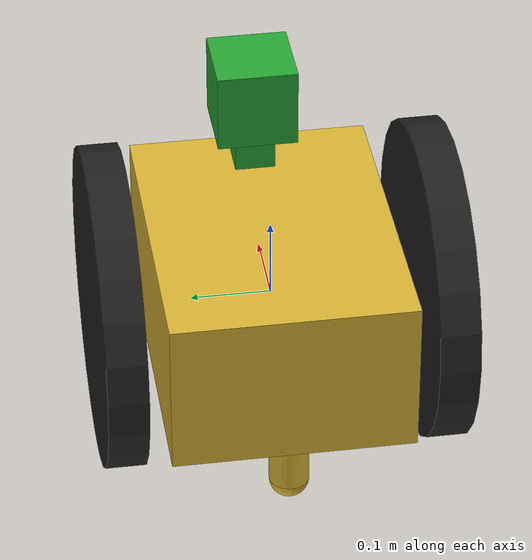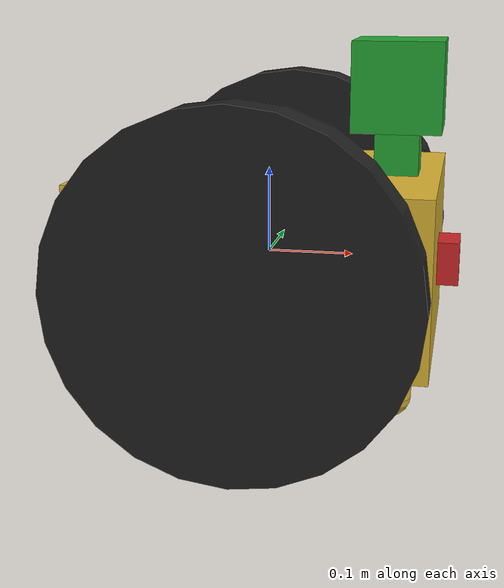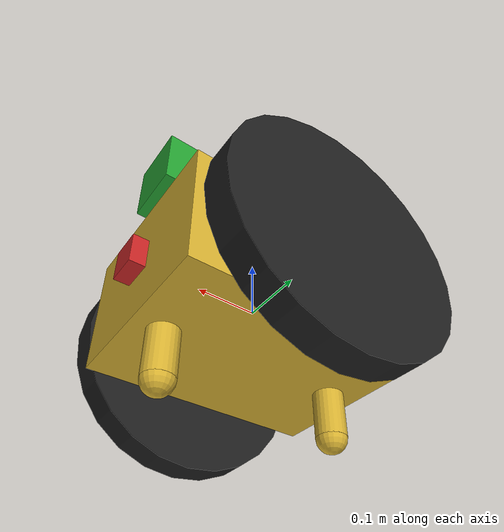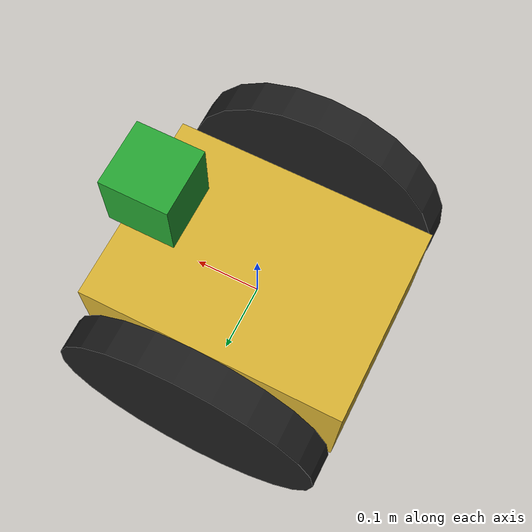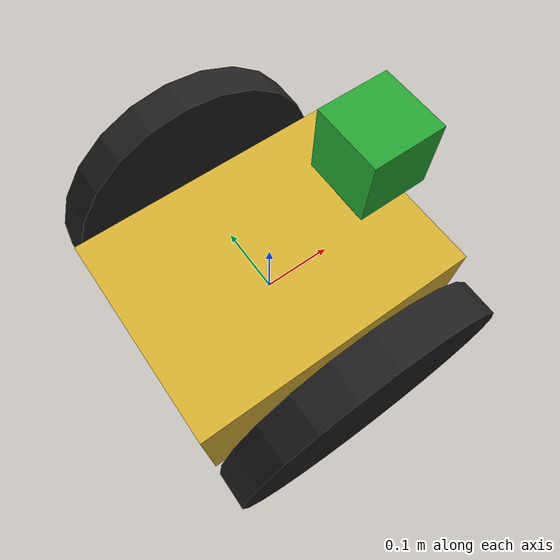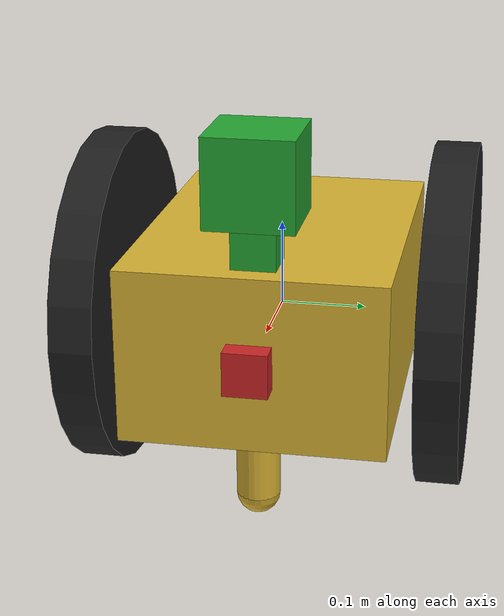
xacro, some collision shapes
<?xml version='1.0'?>

<robot name="my_robot" xmlns:xacro="http://www.ros.org/wiki/xacro">

  <xacro:include filename="$(find my_robot3)/urdf/my_robot.gazebo" />
  <link name="robot_footprint"></link>

  <joint name="robot_footprint_joint" type="fixed">
    <origin xyz="0 0 0" rpy="0 0 0" />
    <parent link="robot_footprint"/>
    <child link="chassis" />
  </joint>

  <link name='chassis'>
    <pose>0 0 0.2 0 0 0</pose>

    <inertial>
      <mass value="15.0"/>
      <origin xyz="0.0 0 0" rpy=" 0 0 0"/>
      <inertia
          ixx="0.1" ixy="0" ixz="0"
          iyy="0.1" iyz="0"
          izz="0.1"
      />
    </inertial>

    <collision name='collision'>
      <origin xyz="0 0 0" rpy=" 0 0 0"/>
      <geometry>
        <box size=".4 .3 .2"/>
      </geometry>
    </collision>

    <visual name='chassis_visual'>
      <origin xyz="0 0 0" rpy=" 0 0 0"/>
      <geometry>
        <box size=".4 .3 .2"/>
      </geometry>
    </visual>

    <collision name='back_caster_collision'>
      <origin xyz="-0.15 0 -0.175" rpy=" 0 0 0"/>
      <geometry>
        <sphere radius="0.0248"/>
      </geometry>
        <surface>
        <friction>
          <ode>
            <mu>0</mu>
            <mu2>0</mu2>
            <slip1>1.0</slip1>
            <slip2>1.0</slip2>
          </ode>
        </friction>
      </surface>
    </collision>

    <visual name='back_caster_visual'>
      <origin xyz="-0.15 0 -0.175" rpy=" 0 0 0"/>
      <geometry>
        <sphere radius="0.025"/>
      </geometry>
    </visual>

     <collision name='back_caster_collision_base'>
      <origin xyz="-0.15 0 -0.125" rpy=" 0 0 0"/>
      <geometry>
         <cylinder radius="0.025" length="0.1"/>
      </geometry>
    </collision>

    <visual name='back_caster_visual_base'>
      <origin xyz="-0.15 0 -0.125" rpy=" 0 0 0"/>
      <geometry>
         <cylinder radius="0.025" length="0.1"/>
      </geometry>
    </visual>

    <collision name='front_caster_collision'>
      <origin xyz="0.15 0 -0.175" rpy=" 0 0 0"/>
      <geometry>
        <sphere radius="0.0248"/>
      </geometry>
        <surface>
        <friction>
          <ode>
            <mu>0</mu>
            <mu2>0</mu2>
            <slip1>1.0</slip1>
            <slip2>1.0</slip2>
          </ode>
        </friction>
      </surface>
    </collision>

    <visual name='front_caster_visual'>
      <origin xyz="0.15 0 -0.175" rpy=" 0 0 0"/>
      <geometry>
        <sphere radius="0.025"/>
      </geometry>
    </visual>

     <collision name='front_caster_collision_base'>
      <origin xyz="0.15 0 -0.125" rpy=" 0 0 0"/>
      <geometry>
         <cylinder radius="0.025" length="0.1"/>
      </geometry>
    </collision>

    <visual name='front_caster_visual_base'>
      <origin xyz="0.15 0 -0.125" rpy=" 0 0 0"/>
      <geometry>
         <cylinder radius="0.025" length="0.1"/>
      </geometry>
    </visual>

  </link>

<link name='left_wheel'>
    <inertial>
      <mass value="5.0"/>
      <origin xyz="0 0 0" rpy="0 1.5707 1.5707"/>
      <inertia
          ixx="0.1" ixy="0" ixz="0"
          iyy="0.1" iyz="0"
          izz="0.1"
      />
    </inertial>

    <collision name='left_wheel_collision'>
      <origin xyz="0 0 0" rpy="0 1.5707 1.5707"/>
      <geometry>
        <cylinder radius="0.2" length="0.05"/>
      </geometry>
    </collision>

    <visual name='left_wheel_visual'>
      <origin xyz="0 0 0" rpy="0 1.5707 1.5707"/>
     <geometry>
        <cylinder radius="0.2" length="0.05"/>
      </geometry>
    </visual>
  </link>

  <link name='right_wheel'>
      <inertial>
      <mass value="5.0"/>
      <origin xyz="0 0 0" rpy="0 1.5707 1.5707"/>
      <inertia
          ixx="0.1" ixy="0" ixz="0"
          iyy="0.1" iyz="0"
          izz="0.1"
      />
    </inertial>

    <collision name='right_wheel_collision'>
      <origin xyz="0 0 0" rpy="0 1.5707 1.5707"/>
      <geometry>
        <cylinder radius="0.2" length="0.05"/>
      </geometry>
    </collision>

    <visual name='right_wheel_visual'>
      <origin xyz="0 0 0" rpy="0 1.5707 1.5707"/>
     <geometry>
        <cylinder radius="0.2" length="0.05"/>
      </geometry>
    </visual>
  </link>

 <joint type="continuous" name="left_wheel_hinge">
    <origin xyz="0 0.20 0" rpy="0 0 0"/>
    <child link="left_wheel"/>
    <parent link="chassis"/>
    <axis xyz="0 1 0" rpy="0 0 0"/>
    <limit effort="10000" velocity="1000"/>
    <dynamics damping="1.0" friction="1.0"/>
  </joint>

<joint type="continuous" name="right_wheel_hinge">
    <origin xyz="0 -0.20 0" rpy="0 0 0"/>
    <child link="right_wheel"/>
    <parent link="chassis"/>
    <axis xyz="0 1 0" rpy="0 0 0"/>
    <limit effort="10000" velocity="1000"/>
    <dynamics damping="1.0" friction="1.0"/>
  </joint>

<link name='camera'>
 <pose>0 0 0 0 0 0</pose>
      <inertial>
      <mass value="0"/>
      <origin xyz="0.05 0.05 0.05" rpy="0 0 0"/>
      <inertia
          ixx="1e-6" ixy="0" ixz="0"
          iyy="1e-6" iyz="0"
          izz="1e-6"
      />
    </inertial>

    <collision>
      <origin xyz="0 0 0" rpy="0 0 0"/>
      <geometry>
        <box size=".05 .05 .05" />
      </geometry>
    </collision>

    <visual>
      <origin xyz="0 0 0" rpy="0 0 0"/>
     <geometry>
         <box size=".05 .05 .05" />
      </geometry>
    </visual>
  </link>

<joint type="fixed" name="camera_joint">
    <origin xyz="0.2 0 0" rpy="0 0 0"/>
    <child link="camera"/>
    <parent link="chassis"/>
    <axis xyz="0 1 0" rpy="0 0 0"/>
  </joint>

 <joint name="camera_optical_joint" type="fixed">
    <origin xyz="0 0 0" rpy="-1.5707 0 -1.5707"/>
    <parent link="camera"/>
    <child link="camera_link_optical"/>
  </joint>

  <link name="camera_link_optical">
  </link>

<link name='hokuyo_base'>
  <pose>0 0 0 0 0 0</pose>
      <inertial>
      <mass value="0"/>
      <origin xyz="0 0 0" rpy="0 0 0"/>
      <inertia
          ixx="1e-6" ixy="0" ixz="0"
          iyy="1e-6" iyz="0"
          izz="1e-6"
      />
    </inertial>

    <collision>
      <origin xyz="0 0 0" rpy="0 0 0"/>
      <geometry>
        <box size="0.05 0.05 0.1" />
      </geometry>
    </collision>

    <visual>
      <origin xyz="0 0 0" rpy="0 0 0"/>
     <geometry>
         <box size="0.05 0.05 .1" />
      </geometry>
    </visual>
  </link>

<joint type="fixed" name="hokuyo_base_joint">
    <origin xyz="0.15 0 0.15" rpy="0 0 0"/>
    <child link="hokuyo_base"/>
    <parent link="chassis"/>
    <axis xyz="0 1 0" rpy="0 0 0"/>
  </joint>

<link name='hokuyo'>
 <pose>0 0 0 0 0 0</pose>
      <inertial>
      <mass value="1e-5"/>
      <origin xyz="0 0 0" rpy="0 0 0"/>
      <inertia
          ixx="1e-6" ixy="0" ixz="0"
          iyy="1e-6" iyz="0"
          izz="1e-6"
      />
    </inertial>

    <collision>
      <origin xyz="0 0 0" rpy="0 0 0"/>
      <geometry>
        <box size=".1 .1 .1" />
      </geometry>
    </collision>

    <visual>
      <origin xyz="0 0 0" rpy="0 0 0"/>
     <geometry>
       <mesh filename="package://my_robot3/meshes/hokuyo.dae">
       </mesh>
      </geometry>
    </visual>
  </link>

<joint type="fixed" name="hokuyo_joint">
    <origin xyz="0.15 0 0.2" rpy="0 0 0"/>
    <child link="hokuyo"/>
    <parent link="chassis"/>
    <axis xyz="0 1 0" rpy="0 0 0"/>
  </joint>

<gazebo reference="left_wheel">
    <material>Gazebo/Black</material>
</gazebo>

<gazebo reference="right_wheel">
    <material>Gazebo/Black</material>
</gazebo>

<gazebo reference="chassis">
    <material>Gazebo/Gold</material>
</gazebo>

<gazebo reference="camera">
    <material>Gazebo/Red</material>
</gazebo>

<gazebo reference="hokuyo">
    <material>Gazebo/Green</material>
</gazebo>

<gazebo reference="hokuyo_base">
    <material>Gazebo/Green</material>
</gazebo>

</robot>
